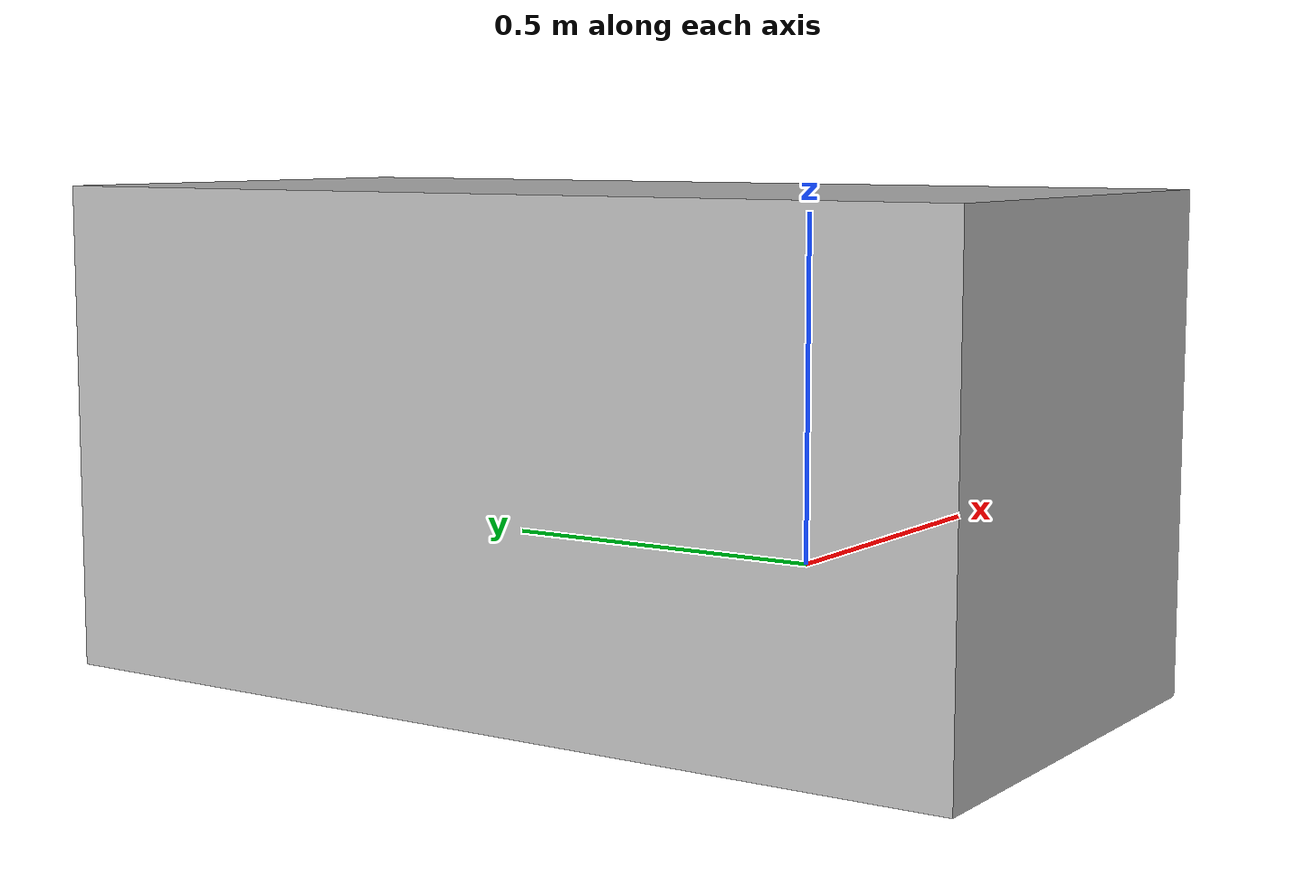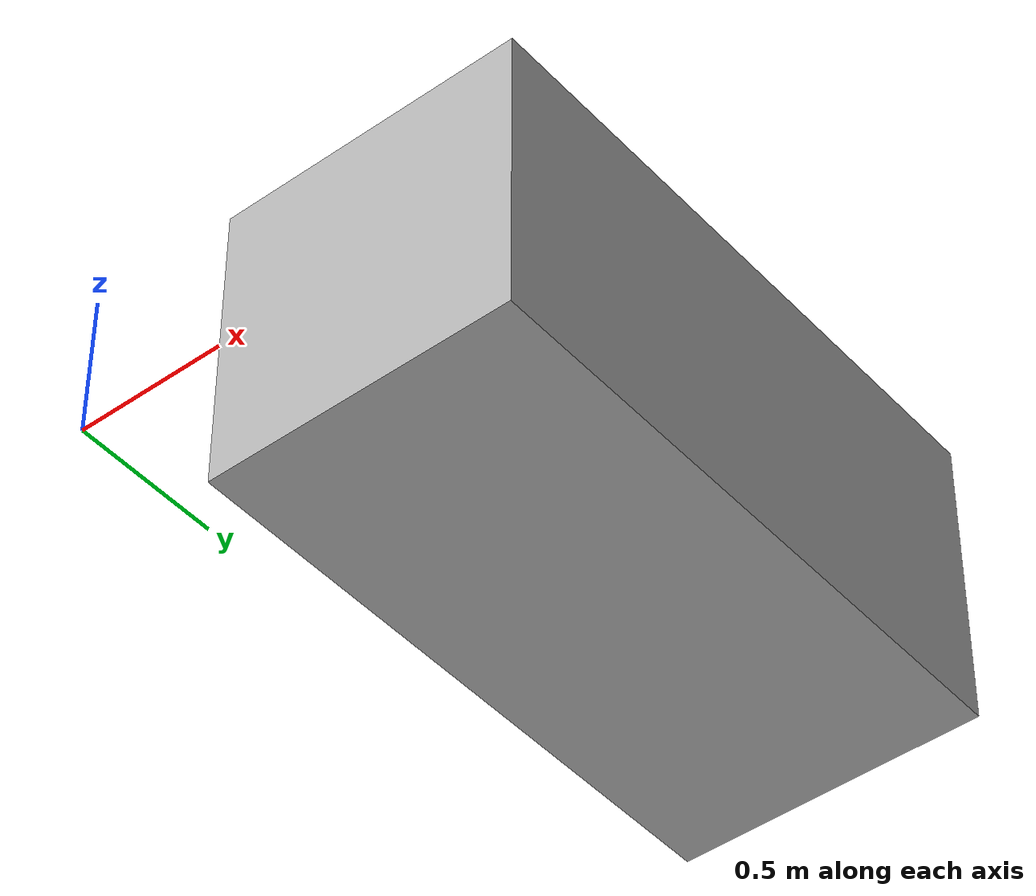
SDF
<?xml version="1.0" ?>
<sdf version="1.5">
  <model name="sample1">
    <pose>1 1 0 0 0 0</pose>
    <static>false</static>
    <link name="link">
      <collision name="collision">
        <geometry>
          <box>
            <size>1 2 1</size>
          </box>
        </geometry>
      </collision>
      <visual name="visual">
        <geometry>
          <box>
            <size>1 2 1</size>
          </box>
        </geometry>
        <material>
          <script>
            <name>Gazebo/BumpyMetal</name>
          </script>
      </material>
      </visual>
    </link>
  </model>
</sdf>
